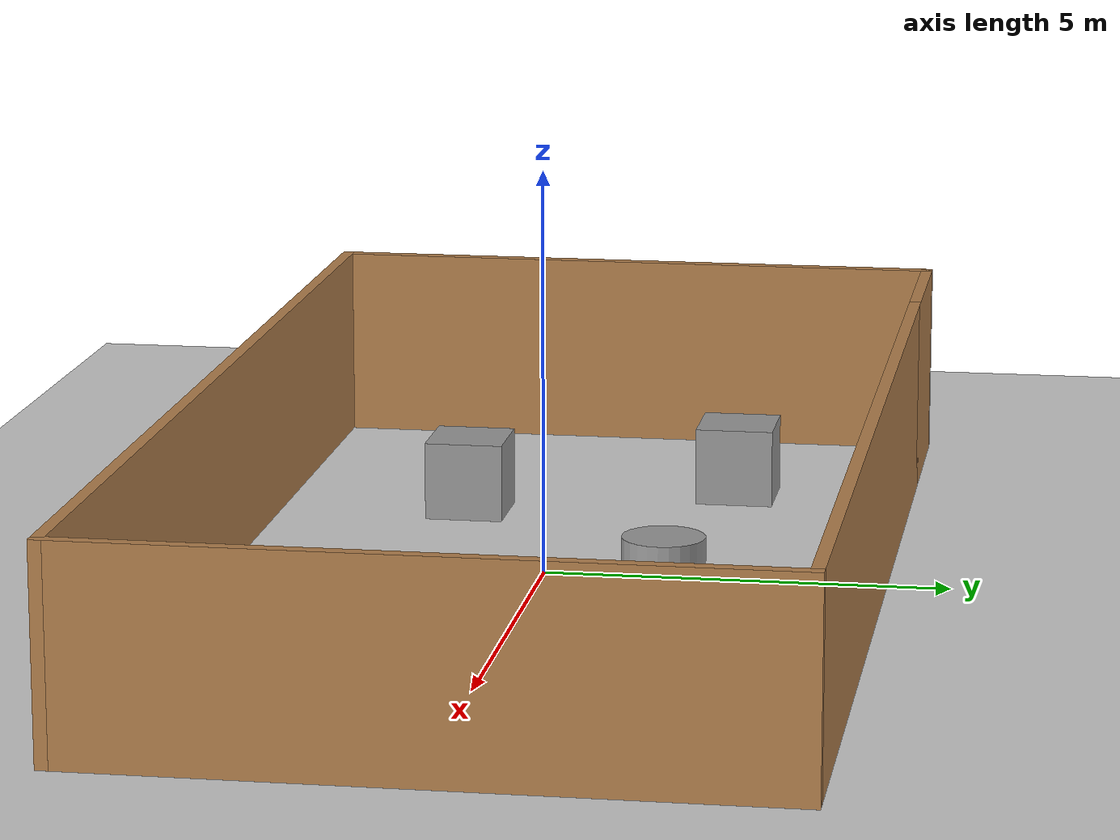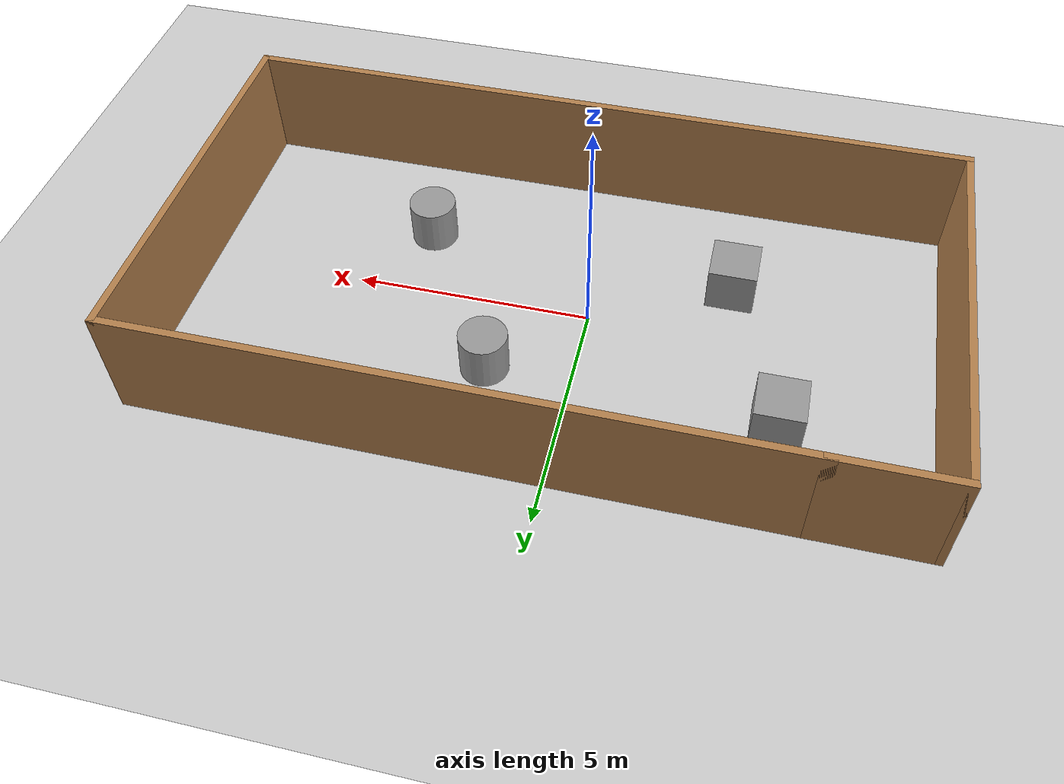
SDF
<sdf version="1.6">
 <world name="default">
  <light name="sun" type="directional">
   <pose>0 0 10 0 -0 0</pose>
   <diffuse>0.8 0.8 0.8 1</diffuse>
   <specular>0.2 0.2 0.2 1</specular>
   <attenuation>
    <range>1000</range>
    <constant>0.9</constant>
    <linear>0.01</linear>
    <quadratic>0.001</quadratic>
   </attenuation>
   <direction>-0.5 0.1 -0.9</direction>
  </light>
  <model name="ground_plane">
   <static>1</static>
   <link name="link">
    <collision name="collision">
     <geometry><plane><normal>0 0 1</normal><size>100 100</size></plane></geometry>
     <surface>
      <contact><collide_bitmask>65535</collide_bitmask></contact>
      <friction><ode><mu>100</mu><mu2>50</mu2></ode></friction>
     </surface>
    </collision>
    <visual name="visual">
     <cast_shadows>0</cast_shadows>
     <geometry><plane><normal>0 0 1</normal><size>100 100</size></plane></geometry>
     <material>
      <script><uri>file://media/materials/scripts/gazebo.material</uri><name>Gazebo/Grey</name></script>
     </material>
    </visual>
   </link>
  </model>
  <gravity>0 0 -9.8</gravity>
  <magnetic_field>6e-06 2.3e-05 -4.2e-05</magnetic_field>
  <atmosphere type="adiabatic"/>
  <physics name="default_physics" default="0" type="ode">
   <max_step_size>0.001</max_step_size>
   <real_time_factor>1</real_time_factor>
   <real_time_update_rate>1000</real_time_update_rate>
  </physics>
  <scene><ambient>0.4 0.4 0.4 1</ambient><background>0.7 0.7 0.7 1</background><shadows>1</shadows></scene>
  <audio><device>default</device></audio>
  <spherical_coordinates>
   <surface_model>EARTH_WGS84</surface_model>
   <latitude_deg>0</latitude_deg>
   <longitude_deg>0</longitude_deg>
   <elevation>0</elevation>
   <heading_deg>0</heading_deg>
  </spherical_coordinates>
  <model name="house">
   <pose>0.589993 0.102946 0 0 -0 0</pose>
   <link name="Wall_10">
    <collision name="Wall_10_Collision">
     <geometry><box><size>2.5 0.15 2.5</size></box></geometry>
     <pose>0 0 1.25 0 -0 0</pose>
    </collision>
    <visual name="Wall_10_Visual">
     <pose>0 0 1.25 0 -0 0</pose>
     <geometry><box><size>2.5 0.15 2.5</size></box></geometry>
     <material>
      <script><uri>file://media/materials/scripts/gazebo.material</uri><name>Gazebo/Wood</name></script>
      <ambient>1 1 1 1</ambient>
     </material>
     <meta><layer>0</layer></meta>
    </visual>
    <pose>-6.625 4.05 0 0 -0 0</pose>
   </link>
   <link name="Wall_5">
    <collision name="Wall_5_Collision">
     <geometry><box><size>13.5 0.15 2.5</size></box></geometry>
     <pose>0 0 1.25 0 -0 0</pose>
    </collision>
    <visual name="Wall_5_Visual">
     <pose>0 0 1.25 0 -0 0</pose>
     <geometry><box><size>13.5 0.15 2.5</size></box></geometry>
     <material>
      <script><uri>file://media/materials/scripts/gazebo.material</uri><name>Gazebo/Wood</name></script>
      <ambient>1 1 1 1</ambient>
     </material>
     <meta><layer>0</layer></meta>
    </visual>
    <pose>1.125 4.05 0 0 -0 0</pose>
   </link>
   <link name="Wall_7">
    <collision name="Wall_7_Collision">
     <geometry><box><size>8.25 0.15 2.5</size></box></geometry>
     <pose>0 0 1.25 0 -0 0</pose>
    </collision>
    <visual name="Wall_7_Visual">
     <pose>0 0 1.25 0 -0 0</pose>
     <geometry><box><size>8.25 0.15 2.5</size></box></geometry>
     <material>
      <script><uri>file://media/materials/scripts/gazebo.material</uri><name>Gazebo/Wood</name></script>
      <ambient>1 1 1 1</ambient>
     </material>
     <meta><layer>0</layer></meta>
    </visual>
    <pose>7.8 0 0 0 -0 -1.5708</pose>
   </link>
   <link name="Wall_8">
    <collision name="Wall_8_Collision">
     <geometry><box><size>15.75 0.15 2.5</size></box></geometry>
     <pose>0 0 1.25 0 -0 0</pose>
    </collision>
    <visual name="Wall_8_Visual">
     <pose>0 0 1.25 0 -0 0</pose>
     <geometry><box><size>15.75 0.15 2.5</size></box></geometry>
     <material>
      <script><uri>file://media/materials/scripts/gazebo.material</uri><name>Gazebo/Wood</name></script>
      <ambient>1 1 1 1</ambient>
     </material>
     <meta><layer>0</layer></meta>
    </visual>
    <pose>-0 -4.05 0 0 -0 3.14159</pose>
   </link>
   <link name="Wall_9">
    <collision name="Wall_9_Collision">
     <geometry><box><size>8.25 0.15 2.5</size></box></geometry>
     <pose>0 0 1.25 0 -0 0</pose>
    </collision>
    <visual name="Wall_9_Visual">
     <pose>0 0 1.25 0 -0 0</pose>
     <geometry><box><size>8.25 0.15 2.5</size></box></geometry>
     <material>
      <script><uri>file://media/materials/scripts/gazebo.material</uri><name>Gazebo/Wood</name></script>
      <ambient>1 1 1 1</ambient>
     </material>
     <meta><layer>0</layer></meta>
    </visual>
    <pose>-7.8 0 0 0 -0 1.5708</pose>
   </link>
   <static>1</static>
  </model>
  <model name="unit_box">
   <pose>-4.11177 1.92624 0.499995 -1e-05 -0 -0</pose>
   <link name="link">
    <inertial>
     <mass>1</mass>
     <inertia>
      <ixx>0.166667</ixx>
      <ixy>0</ixy>
      <ixz>0</ixz>
      <iyy>0.166667</iyy>
      <iyz>0</iyz>
      <izz>0.166667</izz>
     </inertia>
    </inertial>
    <collision name="collision"><geometry><box><size>1 1 1</size></box></geometry></collision>
    <visual name="visual">
     <geometry><box><size>1 1 1</size></box></geometry>
     <material>
      <script><name>Gazebo/Grey</name><uri>file://media/materials/scripts/gazebo.material</uri></script>
     </material>
    </visual>
   </link>
  </model>
  <model name="unit_cylinder">
   <pose>3.85656 -1.69398 0.499997 3e-06 4e-06 -0</pose>
   <link name="link">
    <inertial>
     <mass>1</mass>
     <inertia><ixx>0.145833</ixx><ixy>0</ixy><ixz>0</ixz><iyy>0.145833</iyy><iyz>0</iyz><izz>0.125</izz></inertia>
    </inertial>
    <collision name="collision">
     <geometry><cylinder><radius>0.5</radius><length>1</length></cylinder></geometry>
    </collision>
    <visual name="visual">
     <geometry><cylinder><radius>0.5</radius><length>1</length></cylinder></geometry>
     <material>
      <script><name>Gazebo/Grey</name><uri>file://media/materials/scripts/gazebo.material</uri></script>
     </material>
    </visual>
   </link>
  </model>
  <model name="unit_box_0">
   <pose>-2.81699 -1.42936 0.499995 -1e-05 -0 0</pose>
   <link name="link">
    <inertial>
     <mass>1</mass>
     <inertia>
      <ixx>0.166667</ixx>
      <ixy>0</ixy>
      <ixz>0</ixz>
      <iyy>0.166667</iyy>
      <iyz>0</iyz>
      <izz>0.166667</izz>
     </inertia>
    </inertial>
    <collision name="collision"><geometry><box><size>1 1 1</size></box></geometry></collision>
    <visual name="visual">
     <geometry><box><size>1 1 1</size></box></geometry>
     <material>
      <script><name>Gazebo/Grey</name><uri>file://media/materials/scripts/gazebo.material</uri></script>
     </material>
    </visual>
   </link>
  </model>
  <model name="unit_cylinder_0">
   <pose>1.77321 1.72141 0.499997 3e-06 4e-06 -0</pose>
   <link name="link">
    <inertial>
     <mass>1</mass>
     <inertia><ixx>0.145833</ixx><ixy>0</ixy><ixz>0</ixz><iyy>0.145833</iyy><iyz>0</iyz><izz>0.125</izz></inertia>
    </inertial>
    <collision name="collision">
     <geometry><cylinder><radius>0.5</radius><length>1</length></cylinder></geometry>
    </collision>
    <visual name="visual">
     <geometry><cylinder><radius>0.5</radius><length>1</length></cylinder></geometry>
     <material>
      <script><name>Gazebo/Grey</name><uri>file://media/materials/scripts/gazebo.material</uri></script>
     </material>
    </visual>
   </link>
  </model>
 </world>
</sdf>
